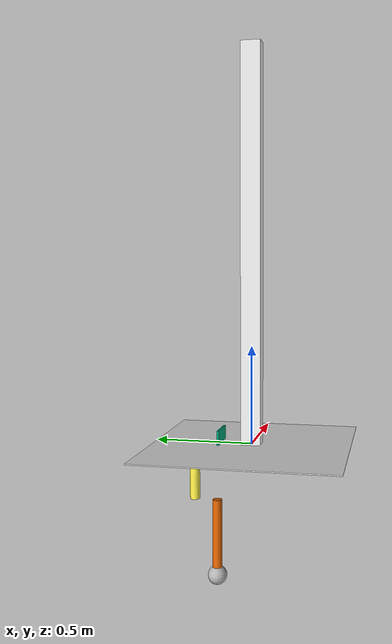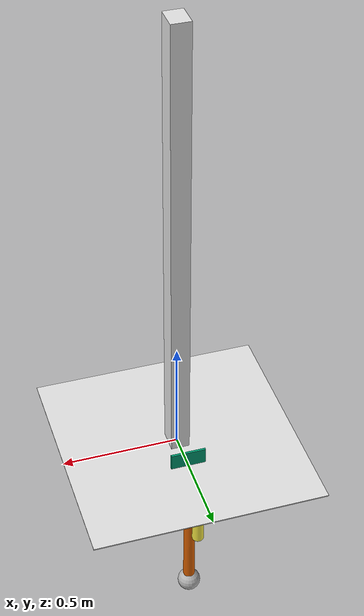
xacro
<?xml version="1.0" encoding="utf-8"  ?>
<robot name="leg" xmlns:xacro="http://www.ros.org/wiki/xacro">

	<xacro:arg name="hip_y_offset" default="0.15" />

	<xacro:arg name="thigh_width" default="0.05" />
	<xacro:arg name="thigh_height" default="0.3" />
	<xacro:arg name="thigh_mass" default="3.3712777" />
	<xacro:arg name="thigh_color" default="1 0.5088 0.0468 1" />

	<xacro:arg name="knee_y_offset" default="-0.1182" />

	<xacro:arg name="shin_width" default="0.05" />
	<xacro:arg name="shin_height" default="0.451" />
	<xacro:arg name="shin_mass" default="1.3106594" />
	<xacro:arg name="shin_color" default="1 0.5088 0.0468 1" />

	<xacro:arg name="rail_color" default="1 1 1 1" />
	<xacro:arg name="rail_width" default="0.08" />
	<xacro:arg name="rail_length" default="0.1" />
	<xacro:arg name="rail_height" default="2" />
	<xacro:arg name="rail_mass" default="1000" />

	<xacro:arg name="slider_width" default="0.15" />
	<xacro:arg name="slider_length" default="0.01" />
	<xacro:arg name="slider_height" default="0.15" />
	<xacro:arg name="slider_y_offset" default="0.01" />
	<xacro:arg name="slider_mass" default="8" />

	<xacro:arg name="hip_friction" default="0.1" />
	<xacro:arg name="rail_friction" default="0.0" />
	<xacro:arg name="knee_friction" default="0.1" />

	<xacro:arg name="rail_x" default="0.0" />
	<xacro:arg name="rail_y" default="0.0" />
	<xacro:arg name="rail_z" default="0.0" />
	<xacro:arg name="rail_roll" default="0.0" />
	<xacro:arg name="rail_pitch" default="0.0" />
	<xacro:arg name="rail_yaw" default="0.0" />

	<xacro:arg name="use_cylinders" default="True" />

	<xacro:property name="hip_y_offset"  default="$(arg hip_y_offset)" />

	<xacro:property name="thigh_width"  default="$(arg thigh_width)" />
	<xacro:property name="thigh_height" default="$(arg thigh_height)" />
	<xacro:property name="thigh_mass"   default="$(arg thigh_mass)" />
	<xacro:property name="thigh_color"  default="$(arg thigh_color)" />

	<xacro:property name="knee_y_offset"  default="$(arg knee_y_offset)" />

	<xacro:property name="shin_width"  default="$(arg shin_width)" />
	<xacro:property name="shin_height" default="$(arg shin_height)" />
	<xacro:property name="shin_mass"   default="$(arg shin_mass)" />
	<xacro:property name="shin_color"  default="$(arg shin_color)" />

	<xacro:property name="rail_color" default="$(arg rail_color)" />
	<xacro:property name="rail_width" default="$(arg rail_width)" />
	<xacro:property name="rail_length" default="$(arg rail_length)" />
	<xacro:property name="rail_height" default="$(arg rail_height)" />
	<xacro:property name="rail_mass" default="$(arg rail_mass)" />

	<xacro:property name="slider_width" default="$(arg slider_width)" />
	<xacro:property name="slider_length" default="$(arg slider_length)" />
	<xacro:property name="slider_height" default="$(arg slider_height)" />
	<xacro:property name="slider_mass" default="$(arg slider_mass)" />
	<xacro:property name="slider_y_offset" default="$(arg slider_y_offset)" />

	<xacro:property name="knee_friction" default="$(arg knee_friction)" />
	<xacro:property name="hip_friction" default="$(arg hip_friction)" />
	<xacro:property name="rail_friction" default="$(arg rail_friction)" />
	<xacro:property name="rail_x" default="$(arg rail_x)" />
	<xacro:property name="rail_y" default="$(arg rail_y)" />
	<xacro:property name="rail_z" default="$(arg rail_z)" />
	<xacro:property name="rail_roll" default="$(arg rail_roll)" />
	<xacro:property name="rail_pitch" default="$(arg rail_pitch)" />
	<xacro:property name="rail_yaw" default="$(arg rail_yaw)" />

	<xacro:property name="use_cylinders" default="$(arg use_cylinders)" />

	<material name="almost_white">
		<color rgba="0.9 0.9 0.9 1"/>
	</material>

	<xacro:macro name="box_inertial" params="mass x y z pose_xyz pose_rpy">
		<inertial>
			<origin xyz="${pose_xyz}" rpy="${pose_rpy}"/>
			<mass value="${mass}" />
			<inertia ixx="${0.083 * mass * (y*y + z*z)}" ixy="0.0" ixz="0.0" iyy="${0.083 * mass * (x*x + z*z)}" iyz="0.0" izz="${0.083 * mass * (x*x + y*y)}"/>
		</inertial>
	</xacro:macro>

    <xacro:macro name="small_inertial" params="">
		<xacro:box_inertial mass="0.0001"
                            x="0.001" y="0.001" z="0.001"
                            pose_xyz = "0 0 0"
                            pose_rpy = "0 0 0"/>
    </xacro:macro>

    <xacro:macro name="cylinder_z_inertial" params="mass height radius pose_xyz pose_rpy">
		<inertial>
			<origin xyz="${pose_xyz}" rpy="${pose_rpy}"/>
			<mass value="${mass}" />
            <inertia    ixx="${1/12.0 * mass * (3*radius*radius + height*height)}" ixy="0.0"  ixz="0.0"
                        iyy="${1/12.0 * mass * (3*radius*radius + height*height)}" iyz="0.0"
                        izz="${1/12.0 * mass * radius*radius}" />
		</inertial>
    </xacro:macro>

	<xacro:macro name="bar" params="use_cylinder
									length
									thickness">
        <xacro:if value="${use_cylinder}">
			<geometry>
				<cylinder length="${length}" radius="${thickness/2}" />
			</geometry>
		</xacro:if>
		<xacro:unless value="${use_cylinder}">
			<geometry>
				<box size="${thickness} ${thickness} ${length}" />
			</geometry>
		</xacro:unless>
    </xacro:macro>

    <link name="world"/>

    <link name="rail_link">
		<origin xyz="${rail_x}    ${rail_y}     ${rail_z}"
                rpy="${rail_roll} ${rail_pitch} ${rail_yaw}"/>
		<visual name = "rail_link_v">
			<origin xyz="0 0 ${rail_height/2}" rpy="0 0 0"/>
			<geometry>
				<box size="${rail_width} ${rail_length} ${rail_height}"/>
			</geometry>
			<material name="almost_white"/>
	   	</visual>
  		<collision name = "rail_link_c">
			<origin xyz="0 0 ${rail_height/2}" rpy="0 0 0"/>
			<geometry>
				<box size="${rail_width} ${rail_length} ${rail_height}"/>
			</geometry>
	   	</collision>
		<visual>
			<geometry>
				<box size="${1.0} ${1.0} 0.005"/>
			</geometry>
			<material name="almost_white"/>
		</visual>

		<xacro:box_inertial mass="${rail_mass}"
                            x="${rail_width}" y="${rail_length}" z="${rail_height}"
                            pose_xyz = "0 0 ${rail_height/2}"
                            pose_rpy = "0 0 0"/>
	</link>
	<gazebo reference="rail_link">
		<visual name="visual">
			<material>
                <ambient>$(arg rail_color)</ambient>
                <diffuse>$(arg rail_color)</diffuse>
			</material>
      	</visual>
    </gazebo>

    <link name="slider_link">
		<visual name = "slider_link_v">
			<origin xyz="0 ${slider_y_offset} 0" rpy="0 0 0"/>
			<geometry>
				<box size="${slider_width} ${slider_length} ${slider_height}"/>
			</geometry>
	   	</visual>
  		<collision name = "slider_link_c">
			<origin xyz="0 ${slider_y_offset} 0" rpy="0 0 0"/>
			<geometry>
				<box size="${slider_width} ${slider_length} ${slider_height}"/>
			</geometry>
	   	</collision>
		<xacro:box_inertial mass="${slider_mass}"
                            x="${slider_width}" y="${slider_length}" z="${slider_height}"
                            pose_xyz = "0 0 0"
                            pose_rpy = "0 0 0"/>
	</link>

	<link name="thigh_link1">
		<visual name = "thigh_link_v">
			<origin xyz="0 0 -${thigh_height/2}" rpy="0 0 0"/>
			<xacro:bar length="${thigh_height}" thickness="${thigh_width}" use_cylinder="${use_cylinders}"/>
	   	</visual>
		<collision name = "thigh_link_c">
			<origin xyz="0 0 -${thigh_height/2}" rpy="0 0 0"/>
			<xacro:bar length="${thigh_height}" thickness="${thigh_width}" use_cylinder="${use_cylinders}"/>
	   	</collision>
		<xacro:small_inertial />
	</link>
	<link name="thigh_link1_com">
		<xacro:cylinder_z_inertial mass="${thigh_mass}" height="${thigh_height}" radius="${thigh_width/2}"
									pose_xyz="0 0 0" pose_rpy="0 0 0"/>
	</link>

	<gazebo reference="thigh_link1">
		<visual name="thigh_link_v">
			<material>
				<ambient>$(arg thigh_color)</ambient>
				<diffuse>$(arg thigh_color)</diffuse>
			</material>
      	</visual>
		<contact>
			<lateral_friction value="0.1"/>
			<rolling_friction value="0.01"/>
			<restitution value="0.05"/>
		</contact>
    </gazebo>

	<link name="shin_link1">
		<!-- shin_height is the knee to foot tip distance, so the actual shin lenght is determined accordingly-->
		<visual name = "shin_link_v">
			<origin xyz="0 0 -${(shin_height-shin_width)/2}" rpy="0 0 0"/>
			<xacro:bar length="${shin_height-shin_width}" thickness="${shin_width}" use_cylinder="${use_cylinders}"/>
	   	</visual>
		<collision name = "shin_link_c">
			<origin xyz="0 0 -${(shin_height-shin_width)/2}" rpy="0 0 0"/>
			<xacro:bar length="${shin_height-shin_width}" thickness="${shin_width}" use_cylinder="${use_cylinders}"/>
		</collision>
		<xacro:small_inertial />

	</link>
	<link name="shin_link1_com">
		<xacro:cylinder_z_inertial mass="${shin_mass}" height="${shin_height}" radius="${shin_width/2}"
									pose_xyz="0 0 -${shin_height/2}" pose_rpy="0 0 0"/>
	</link>
	<gazebo reference="shin_link1">
		<visual name="visual">
			<material>
				<ambient>$(arg shin_color)</ambient>
				<diffuse>$(arg shin_color)</diffuse>
			</material>
      	</visual>
		<contact>
			<lateral_friction value="0.01"/>
			<rolling_friction value="0.01"/>
			<restitution value="0.05"/>
		</contact>
    </gazebo>

    <link name="foot_center_link">
        <visual>
			<origin xyz="0 0 0" rpy="0 0 0"/>
            <geometry>
                <sphere radius="${shin_width}" />
            </geometry>
        </visual>
        <collision>
			<origin xyz="0 0 0" rpy="0 0 0"/>
            <geometry>
                <sphere radius="${shin_width}" />
            </geometry>
        </collision>
		<xacro:small_inertial />
		<contact>
			<lateral_friction value="0.9"/>
			<rolling_friction value="0.01"/>
			<restitution value="0.05"/>
		</contact>
	</link>

    <link name="foot_link">
		<xacro:small_inertial />
	</link>

	<joint name="world_to_rail" type="fixed">
        <parent link="world"/>
        <child link="rail_link"/>
    </joint>
	<joint name="rail_joint" type="prismatic">
    	<parent link="rail_link"/>
    	<child link="slider_link"/>
		<dynamics damping="0.0" friction="${rail_friction}"/>
       	<limit lower="0.0" upper="2.0" effort="2000000" velocity="100000"/>
    	<origin xyz="0 ${hip_y_offset} 0" rpy="0 0 0"/>
        <axis xyz="0 0 1"/>
	</joint>
    <joint name="hip_joint_1" type="revolute">
    	<parent link="slider_link"/>
    	<child link="thigh_link1"/>
    	<origin xyz="0 ${hip_y_offset} 0" rpy="0 0 0"/>
		<dynamics damping="0.0" friction="${hip_friction}"/>
       	<limit lower="-2.4" upper="2.4" effort="112" velocity="20"/>
        <axis xyz="0 1 0"/>
	</joint>
	<joint name="thigh_link1_com" type="fixed">
        <parent link="thigh_link1"/>
        <child link="thigh_link1_com"/>
		<origin xyz="0 0 -${thigh_height/2}" rpy="0 0 0"/>
    </joint>

 	<joint name="knee_joint_1" type="revolute">
    	<parent link="thigh_link1"/>
    	<child link="shin_link1"/>
    	<origin xyz="0 ${knee_y_offset} -${thigh_height}" rpy="0 0 0"/>
		<dynamics damping="0.0" friction="${knee_friction}"/>
       	<limit lower="-2.4" upper="2.4" effort="112" velocity="20"/>
        <axis xyz="0 -1 0"/>
	</joint>
	<joint name="shin_link1_com" type="fixed">
        <parent link="shin_link1"/>
        <child link="shin_link1_com"/>
		<origin xyz="0 0 -${shin_height/2}" rpy="0 0 0"/>
    </joint>

	<joint name="foot_center_joint" type="fixed">
        <parent link="shin_link1"/>
        <child link="foot_center_link"/>
    	<origin xyz="0 0 -${shin_height-shin_width}" rpy="0 0 0"/>
    </joint>

	<joint name="foot_joint" type="fixed">
        <parent link="shin_link1"/>
        <child link="foot_link"/>
    	<origin xyz="0 0 -${shin_height}" rpy="0 0 0"/>
    </joint>

</robot>
